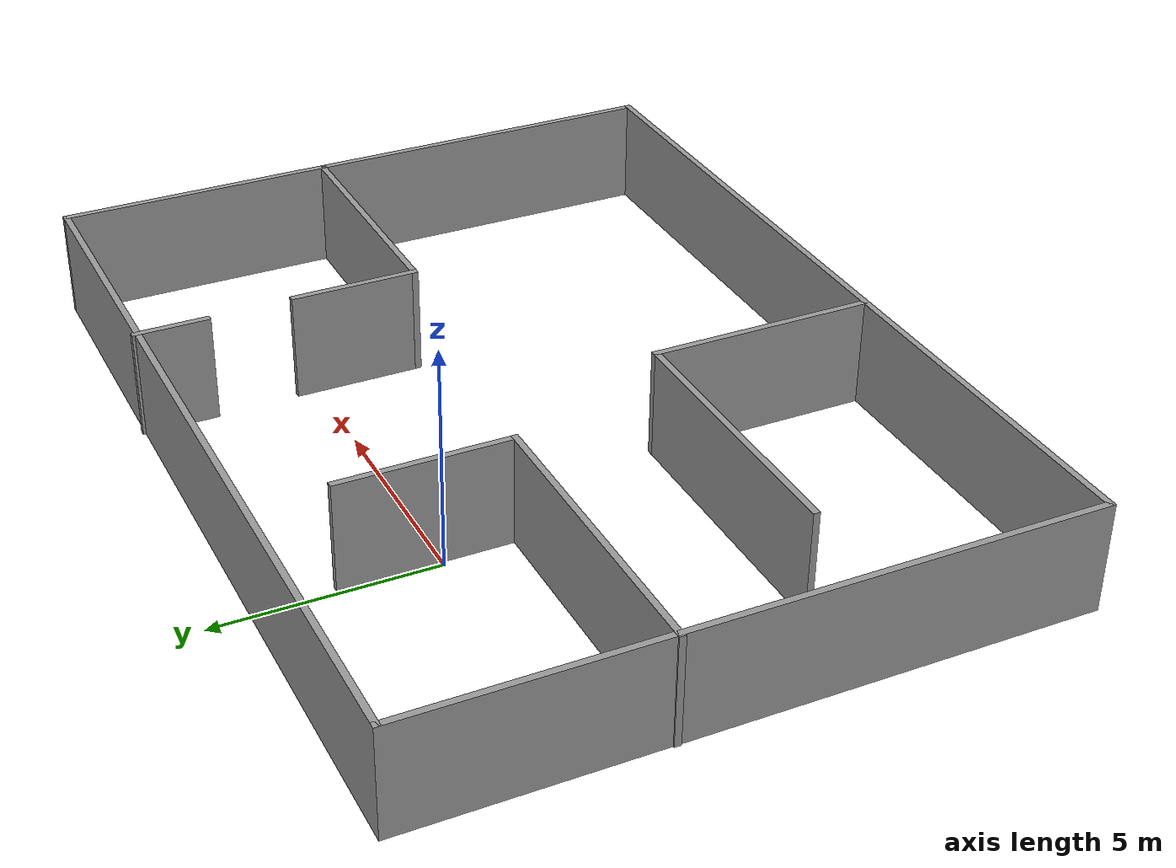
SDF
<?xml version='1.0'?>
<sdf version='1.7'>
  <model name='model'>
    <pose>3.27672 -3.41075 0 0 -0 0</pose>
    <link name='Wall_16'>
      <collision name='Wall_16_Collision'>
        <geometry>
          <box>
            <size>20 0.15 2.5</size>
          </box>
        </geometry>
        <pose>0 0 1.25 0 -0 0</pose>
      </collision>
      <visual name='Wall_16_Visual'>
        <pose>0 0 1.25 0 -0 0</pose>
        <geometry>
          <box>
            <size>20 0.15 2.5</size>
          </box>
        </geometry>
        <material>
          <script>
            <uri>file://media/materials/scripts/gazebo.material</uri>
            <name>Gazebo/Grey</name>
          </script>
          <ambient>1 1 1 1</ambient>
        </material>
        <meta>
          <layer>0</layer>
        </meta>
      </visual>
      <pose>0.017228 7.39371 0 0 -0 4e-06</pose>
    </link>
    <link name='Wall_17'>
      <collision name='Wall_17_Collision'>
        <geometry>
          <box>
            <size>15 0.15 2.5</size>
          </box>
        </geometry>
        <pose>0 0 1.25 0 -0 0</pose>
      </collision>
      <visual name='Wall_17_Visual'>
        <pose>0 0 1.25 0 -0 0</pose>
        <geometry>
          <box>
            <size>15 0.15 2.5</size>
          </box>
        </geometry>
        <material>
          <script>
            <uri>file://media/materials/scripts/gazebo.material</uri>
            <name>Gazebo/Grey</name>
          </script>
          <ambient>1 1 1 1</ambient>
        </material>
        <meta>
          <layer>0</layer>
        </meta>
      </visual>
      <pose>9.94228 -0.031247 0 0 -0 -1.5708</pose>
    </link>
    <link name='Wall_19'>
      <collision name='Wall_19_Collision'>
        <geometry>
          <box>
            <size>20 0.15 2.5</size>
          </box>
        </geometry>
        <pose>0 0 1.25 0 -0 0</pose>
      </collision>
      <visual name='Wall_19_Visual'>
        <pose>0 0 1.25 0 -0 0</pose>
        <geometry>
          <box>
            <size>20 0.15 2.5</size>
          </box>
        </geometry>
        <material>
          <script>
            <uri>file://media/materials/scripts/gazebo.material</uri>
            <name>Gazebo/Grey</name>
          </script>
          <ambient>1 1 1 1</ambient>
        </material>
        <meta>
          <layer>0</layer>
        </meta>
      </visual>
      <pose>0.017281 -7.45625 0 0 -0 3.14159</pose>
    </link>
    <link name='Wall_20'>
      <collision name='Wall_20_Collision'>
        <geometry>
          <box>
            <size>14.9999 0.15 2.5</size>
          </box>
        </geometry>
        <pose>0 0 1.25 0 -0 0</pose>
      </collision>
      <visual name='Wall_20_Visual'>
        <pose>0 0 1.25 0 -0 0</pose>
        <geometry>
          <box>
            <size>14.9999 0.15 2.5</size>
          </box>
        </geometry>
        <material>
          <script>
            <uri>file://media/materials/scripts/gazebo.material</uri>
            <name>Gazebo/Grey</name>
          </script>
          <ambient>1 1 1 1</ambient>
        </material>
        <meta>
          <layer>0</layer>
        </meta>
      </visual>
      <pose>-9.90777 -0.031286 0 0 -0 1.5708</pose>
    </link>
    <link name='Wall_23'>
      <collision name='Wall_23_Collision'>
        <geometry>
          <box>
            <size>7 0.15 2.5</size>
          </box>
        </geometry>
        <pose>0 0 1.25 0 -0 0</pose>
      </collision>
      <visual name='Wall_23_Visual'>
        <pose>0 0 1.25 0 -0 0</pose>
        <geometry>
          <box>
            <size>7 0.15 2.5</size>
          </box>
        </geometry>
        <material>
          <script>
            <uri>file://media/materials/scripts/gazebo.material</uri>
            <name>Gazebo/Grey</name>
          </script>
          <ambient>1 1 1 1</ambient>
        </material>
        <meta>
          <layer>0</layer>
        </meta>
      </visual>
      <pose>-6.51728 1.74902 0 0 -0 0</pose>
    </link>
    <link name='Wall_24'>
      <collision name='Wall_24_Collision'>
        <geometry>
          <box>
            <size>4 0.15 2.5</size>
          </box>
        </geometry>
        <pose>0 0 1.25 0 -0 0</pose>
      </collision>
      <visual name='Wall_24_Visual'>
        <pose>0 0 1.25 0 -0 0</pose>
        <geometry>
          <box>
            <size>4 0.15 2.5</size>
          </box>
        </geometry>
        <material>
          <script>
            <uri>file://media/materials/scripts/gazebo.material</uri>
            <name>Gazebo/Grey</name>
          </script>
          <ambient>1 1 1 1</ambient>
        </material>
        <meta>
          <layer>0</layer>
        </meta>
      </visual>
      <pose>-3.09228 3.67402 0 0 -0 1.5708</pose>
    </link>
    <link name='Wall_26'>
      <collision name='Wall_26_Collision'>
        <geometry>
          <box>
            <size>5.25 0.15 2.5</size>
          </box>
        </geometry>
        <pose>0 0 1.25 0 -0 0</pose>
      </collision>
      <visual name='Wall_26_Visual'>
        <pose>0 0 1.25 0 -0 0</pose>
        <geometry>
          <box>
            <size>5.25 0.15 2.5</size>
          </box>
        </geometry>
        <material>
          <script>
            <uri>file://media/materials/scripts/gazebo.material</uri>
            <name>Gazebo/Grey</name>
          </script>
          <ambient>1 1 1 1</ambient>
        </material>
        <meta>
          <layer>0</layer>
        </meta>
      </visual>
      <pose>-1.41491 -4.8295 0 0 -0 1.5708</pose>
    </link>
    <link name='Wall_27'>
      <collision name='Wall_27_Collision'>
        <geometry>
          <box>
            <size>6.5 0.15 2.5</size>
          </box>
        </geometry>
        <pose>0 0 1.25 0 -0 0</pose>
      </collision>
      <visual name='Wall_27_Visual'>
        <pose>0 0 1.25 0 -0 0</pose>
        <geometry>
          <box>
            <size>6.5 0.15 2.5</size>
          </box>
        </geometry>
        <material>
          <script>
            <uri>file://media/materials/scripts/gazebo.material</uri>
            <name>Gazebo/Grey</name>
          </script>
          <ambient>1 1 1 1</ambient>
        </material>
        <meta>
          <layer>0</layer>
        </meta>
      </visual>
      <pose>-4.58992 -2.2795 0 0 -0 3.14159</pose>
    </link>
    <link name='Wall_29'>
      <collision name='Wall_29_Collision'>
        <geometry>
          <box>
            <size>6 0.15 2.5</size>
          </box>
        </geometry>
        <pose>0 0 1.25 0 -0 0</pose>
      </collision>
      <visual name='Wall_29_Visual'>
        <pose>0 0 1.25 0 -0 0</pose>
        <geometry>
          <box>
            <size>6 0.15 2.5</size>
          </box>
        </geometry>
        <material>
          <script>
            <uri>file://media/materials/scripts/gazebo.material</uri>
            <name>Gazebo/Grey</name>
          </script>
          <ambient>1 1 1 1</ambient>
        </material>
        <meta>
          <layer>0</layer>
        </meta>
      </visual>
      <pose>6.97515 0.990149 0 0 -0 3.14159</pose>
    </link>
    <link name='Wall_30'>
      <collision name='Wall_30_Collision'>
        <geometry>
          <box>
            <size>3 0.15 2.5</size>
          </box>
        </geometry>
        <pose>0 0 1.25 0 -0 0</pose>
      </collision>
      <visual name='Wall_30_Visual'>
        <pose>0 0 1.25 0 -0 0</pose>
        <geometry>
          <box>
            <size>3 0.15 2.5</size>
          </box>
        </geometry>
        <material>
          <script>
            <uri>file://media/materials/scripts/gazebo.material</uri>
            <name>Gazebo/Grey</name>
          </script>
          <ambient>1 1 1 1</ambient>
        </material>
        <meta>
          <layer>0</layer>
        </meta>
      </visual>
      <pose>4.05015 2.41515 0 0 -0 1.5708</pose>
    </link>
    <link name='Wall_32'>
      <collision name='Wall_32_Collision'>
        <geometry>
          <box>
            <size>1.75 0.15 2.5</size>
          </box>
        </geometry>
        <pose>0 0 1.25 0 -0 0</pose>
      </collision>
      <visual name='Wall_32_Visual'>
        <pose>0 0 1.25 0 -0 0</pose>
        <geometry>
          <box>
            <size>1.75 0.15 2.5</size>
          </box>
        </geometry>
        <material>
          <script>
            <uri>file://media/materials/scripts/gazebo.material</uri>
            <name>Gazebo/Grey</name>
          </script>
          <ambient>1 1 1 1</ambient>
        </material>
        <meta>
          <layer>0</layer>
        </meta>
      </visual>
      <pose>3.99046 6.65625 0 0 -0 -1.5708</pose>
    </link>
    <static>1</static>
  </model>
</sdf>
